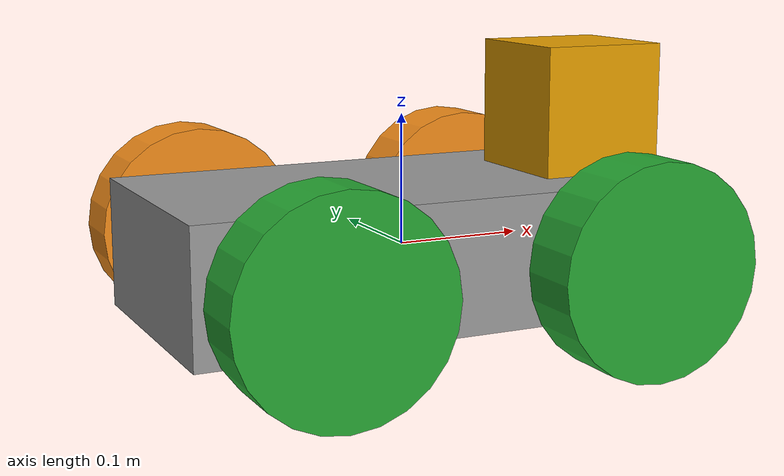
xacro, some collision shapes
<?xml version='1.0'?>

<robot name="project2robot" xmlns:xacro="http://www.ros.org/wiki/xacro">

  <xacro:include filename="$(find my_robot)/urdf/materials.xacro" />
  <xacro:include filename="$(find my_robot)/urdf/project2robot.gazebo" />
  <!--xacro:include filename="$(find my_robot)/urdf/macros.xacro" /-->

  <link name="robot_footprint"></link>

  <joint name="robot_footprint_joint" type="fixed">
    <origin xyz="0 0 0" rpy="0 0 0" />
    <parent link="robot_footprint"/>
    <child link="chassis" />
  </joint>

  <joint type="continuous" name="left_front_wheel_hinge">
    <origin xyz="0.12 0.15 0" rpy="0 0 0"/>
    <child link="left_front_wheel"/>
    <parent link="chassis"/>
    <axis xyz="0 1 0" rpy="0 0 0"/>
    <limit effort="10000" velocity="1000"/>
    <dynamics damping="1.0" friction="1.0"/>
  </joint>

  <joint type="continuous" name="right_front_wheel_hinge">
    <origin xyz="0.12 -0.15 0" rpy="0 0 0"/>
    <child link="right_front_wheel"/>
    <parent link="chassis"/>
    <axis xyz="0 1 0" rpy="0 0 0"/>
    <limit effort="10000" velocity="1000"/>
    <dynamics damping="1.0" friction="1.0"/>
  </joint>

  <joint type="continuous" name="left_back_wheel_hinge">
    <origin xyz="-0.12 0.15 0" rpy="0 0 0"/>
    <child link="left_back_wheel"/>
    <parent link="chassis"/>
    <axis xyz="0 1 0" rpy="0 0 0"/>
    <limit effort="10000" velocity="1000"/>
    <dynamics damping="1.0" friction="1.0"/>
  </joint>

  <joint type="continuous" name="right_back_wheel_hinge">
    <origin xyz="-0.12 -0.15 0" rpy="0 0 0"/>
    <child link="right_back_wheel"/>
    <parent link="chassis"/>
    <axis xyz="0 1 0" rpy="0 0 0"/>
    <limit effort="10000" velocity="1000"/>
    <dynamics damping="1.0" friction="1.0"/>
  </joint>

  <joint type="fixed" name="camera_joint">
    <origin xyz="0.2 0 0" rpy="0 0 0"/>
    <child link="camera_link"/>
    <parent link="chassis"/>
    <axis xyz="0 1 0" rpy="0 0 0"/>
    <limit effort="10000" velocity="1000"/>
    <dynamics damping="1.0" friction="1.0"/>
  </joint>

  <joint name="camera_optical_joint" type="fixed">
    <origin xyz="0 0 0" rpy="-1.5707 0 -1.5707"/>
    <parent link="camera_link"/>
    <child link="camera_link_optical"/>
  </joint>

  <link name="camera_link_optical">
  </link>

  <joint type="fixed" name="hokuyo_joint">
    <origin xyz="0.15 0 0.1" rpy="0 0 0"/>
    <child link="hokuyo"/>
    <parent link="chassis"/>
    <axis xyz="0 1 0" rpy="0 0 0"/>
  </joint>

#### add base_link chassis####
  <link name='chassis'>
    <pose>0 0 0.1 0 0 0</pose>

    <inertial>
      <mass value="15.0"/>
      <origin xyz="0.0 0 0" rpy=" 0 0 0"/>
      <inertia
          ixx="0.1" ixy="0" ixz="0"
          iyy="0.1" iyz="0"
          izz="0.1"
      />
    </inertial>

    <collision name='collision'>
      <origin xyz="0 0 0" rpy=" 0 0 0"/>
      <geometry>
        <box size=".4 .2 .1"/>
      </geometry>
    </collision>

    <visual name='chassis_visual'>
      <origin xyz="0 0 0" rpy=" 0 0 0"/>
      <geometry>
        <box size=".4 .2 .1"/>
      </geometry>
      <material name="grey"/>
    </visual>

  </link>

#### add wheel ####
	<xacro:property name="length_wheel" value="0.05" />
	<xacro:property name="radius_wheel" value="0.08" />

  <link name='left_front_wheel'>
    <pose>0 0 0.1 0 0 0</pose>

    <inertial>
      <mass value="5.0"/>
      <origin xyz="0.0 0 0" rpy=" 0 1.5707 1.5707"/>
      <inertia
          ixx="0.1" ixy="0" ixz="0"
          iyy="0.1" iyz="0"
          izz="0.1"
      />
    </inertial>

    <collision name='collision'>
      <origin xyz="0.0 0 0" rpy=" 0 1.5707 1.5707"/>
      <geometry>
       	<cylinder length="${length_wheel}" radius="${radius_wheel}"/>
      </geometry>
    </collision>

    <visual name='chassis_visual'>
      <origin xyz="0.0 0 0" rpy=" 0 1.5707 1.5707"/>
      <geometry>
       	<cylinder length="${length_wheel}" radius="${radius_wheel}"/>
      </geometry>
      <material name="orange"/>
    </visual>
  </link>

  <link name='right_front_wheel'>
    <pose>0 0 0.1 0 0 0</pose>

    <inertial>
      <mass value="5.0"/>
      <origin xyz="0.0 0 0" rpy=" 0 1.5707 1.5707"/>
      <inertia
          ixx="0.1" ixy="0" ixz="0"
          iyy="0.1" iyz="0"
          izz="0.1"
      />
    </inertial>

    <collision name='collision'>
      <origin xyz="0.0 0 0" rpy=" 0 1.5707 1.5707"/>
      <geometry>
       	<cylinder length="${length_wheel}" radius="${radius_wheel}"/>
      </geometry>
    </collision>

    <visual name='chassis_visual'>
      <origin xyz="0.0 0 0" rpy=" 0 1.5707 1.5707"/>
      <geometry>
       	<cylinder length="${length_wheel}" radius="${radius_wheel}"/>
      </geometry>
      <material name="green"/>
    </visual>
  </link>

  <link name='left_back_wheel'>
    <pose>0 0 0.1 0 0 0</pose>

    <inertial>
      <mass value="5.0"/>
      <origin xyz="0.0 0 0" rpy=" 0 1.5707 1.5707"/>
      <inertia
          ixx="0.1" ixy="0" ixz="0"
          iyy="0.1" iyz="0"
          izz="0.1"
      />
    </inertial>

    <collision name='collision'>
      <origin xyz="0.0 0 0" rpy=" 0 1.5707 1.5707"/>
      <geometry>
       	<cylinder length="${length_wheel}" radius="${radius_wheel}"/>
      </geometry>
    </collision>

    <visual name='chassis_visual'>
      <origin xyz="0.0 0 0" rpy=" 0 1.5707 1.5707"/>
      <geometry>
       	<cylinder length="${length_wheel}" radius="${radius_wheel}"/>
      </geometry>
      <material name="orange"/>
    </visual>
  </link>

  <link name='right_back_wheel'>
    <pose>0 0 0.1 0 0 0</pose>

    <inertial>
      <mass value="5.0"/>
      <origin xyz="0.0 0 0" rpy=" 0 1.5707 1.5707"/>
      <inertia
          ixx="0.1" ixy="0" ixz="0"
          iyy="0.1" iyz="0"
          izz="0.1"
      />
    </inertial>

    <collision name='collision'>
      <origin xyz="0.0 0 0" rpy=" 0 1.5707 1.5707"/>
      <geometry>
       	<cylinder length="${length_wheel}" radius="${radius_wheel}"/>
      </geometry>
    </collision>

    <visual name='chassis_visual'>
      <origin xyz="0.0 0 0" rpy=" 0 1.5707 1.5707"/>
      <geometry>
       	<cylinder length="${length_wheel}" radius="${radius_wheel}"/>
      </geometry>
      <material name="green"/>
    </visual>
  </link>

#### add camera ####
  <link name='camera_link'>
    <pose>0 0 0.1 0 0 0</pose>

    <inertial>
      <mass value="0.1"/>
      <origin xyz="0 0 0" rpy=" 0 0 0"/>
      <inertia
          ixx="1e-6" ixy="0" ixz="0"
          iyy="1e-6" iyz="0"
          izz="1e-6"
      />
    </inertial>

    <collision name='collision'>
      <origin xyz="0.0 0 0" rpy=" 0 0 0"/>
      <geometry>
        <box size=".05 .05 .05"/>
      </geometry>
    </collision>

    <visual name='chassis_visual'>
      <origin xyz="0.0 0 0" rpy=" 0 0 0"/>
      <geometry>
        <box size=".05 .05 .05"/>
      </geometry>
      <material name="red"/>
    </visual>
  </link>

#### add hokuyo ####
  <link name='hokuyo'>
    <pose>0 0 0.1 0 0 0</pose>

    <inertial>
      <mass value="1e-5"/>
      <origin xyz="0 0 0" rpy=" 0 0 0"/>
      <inertia
          ixx="1e-6" ixy="0" ixz="0"
          iyy="1e-6" iyz="0"
          izz="1e-6"
      />
    </inertial>

    <collision name='collision'>
      <origin xyz="0.0 0 0" rpy=" 0 0 0"/>
      <geometry>
        <box size=".1 .1 .1"/>
      </geometry>
    </collision>

    <visual name='chassis_visual'>
      <origin xyz="0.0 0 0" rpy=" 0 0 0"/>
      <geometry>
        <!--box size=".1 .1 .1"/-->
        <mesh filename="package://my_robot/meshes/hokuyo.dae"/>
      </geometry>
    </visual>
  </link>

</robot>
